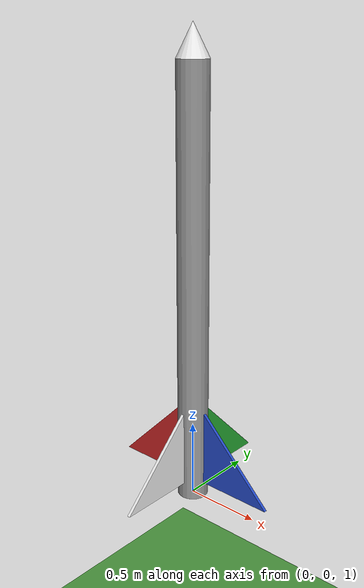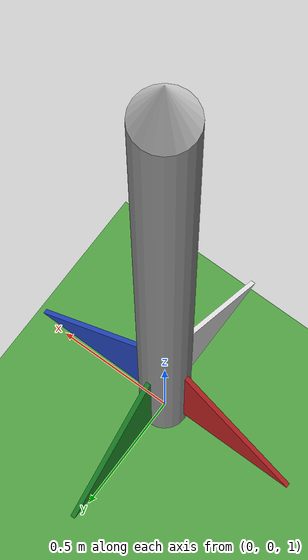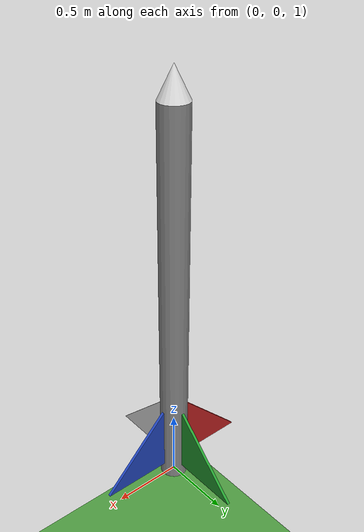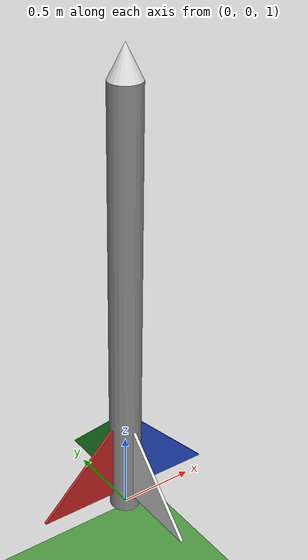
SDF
<sdf version="1.6">
 <world name="default">
  <scene><sky><clouds><speed>12</speed></clouds></sky></scene>
  <spherical_coordinates>
   <latitude_deg>29.4047089</latitude_deg>
   <longitude_deg>-82.1745834</longitude_deg>
   <elevation>100</elevation>
  </spherical_coordinates>
  <include><uri>model://sun</uri></include>
  <include><pose>0 0 1 0 -1.57 0</pose><uri>model://rocket</uri></include>
  <model name="ground_plane">
   <static>true</static>
   <link name="link">
    <collision name="collision">
     <geometry><plane><normal>0 0 1</normal><size>10000 10000</size></plane></geometry>
     <surface><friction><ode><mu>1</mu><mu2>1</mu2></ode></friction></surface>
    </collision>
    <visual name="grass">
     <pose>0 0 -0.1 0 0 0</pose>
     <cast_shadows>false</cast_shadows>
     <geometry><plane><normal>0 0 1</normal><size>10000 10000</size></plane></geometry>
     <material>
      <script><uri>file://media/materials/scripts/gazebo.material</uri><name>Gazebo/Grass</name></script>
     </material>
    </visual>
   </link>
  </model>
  <physics name="default_physics" default="0" type="ode">
   <ode>
    <solver>
     <type>quick</type>
     <iters>10</iters>
     <sor>1.3</sor>
     <use_dynamic_moi_rescaling>0</use_dynamic_moi_rescaling>
    </solver>
    <constraints>
     <cfm>0</cfm>
     <erp>0.2</erp>
     <contact_max_correcting_vel>100</contact_max_correcting_vel>
     <contact_surface_layer>0.001</contact_surface_layer>
    </constraints>
   </ode>
   <max_step_size>0.004</max_step_size>
   <real_time_factor>1</real_time_factor>
   <real_time_update_rate>250</real_time_update_rate>
  </physics>
 </world>
</sdf>

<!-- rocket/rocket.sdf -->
<sdf version='1.6'>
  <model name="rocket">

    <link name='body'>
      <inertial>
        <pose>1.0 0 0 0 1.57 0</pose>
      </inertial>
      <collision name='body_collision'>
        <pose>0 0 0 0 1.57 0</pose>
        <geometry>
          <mesh>
            <uri>model://rocket/meshes/stl/purdue.dae</uri>
          </mesh>
        </geometry>
      </collision>
      <visual name='body_visual'>
        <pose>0 0 0 0 1.57 0</pose>
        <geometry>
          <mesh>
            <uri>model://rocket/meshes/stl/purdue.dae</uri>
          </mesh>
        </geometry>
        <material>
          <script>
            <name>Gazebo/Grey</name>
          </script>
        </material>
      </visual>
      <collision name='nose_collision'>
        <pose>0 0 0 0 1.57 0</pose>
        <geometry>
          <mesh>
            <uri>model://rocket/meshes/stl/nose_cone.stl</uri>
          </mesh>
        </geometry>
      </collision>
      <visual name='nose_visual'>
        <pose>0 0 0 0 1.57 0</pose>
        <geometry>
          <mesh>
            <uri>model://rocket/meshes/stl/nose_cone.stl</uri>
          </mesh>
        </geometry>
        <material>
          <script>
            <name>Gazebo/White</name>
          </script>
        </material>
      </visual>
    </link>

    <link name='fin0'>
      <pose>0 0 0.1 0 0 0</pose>
      <inertial>
        <mass>1e-5</mass>
        <inertia>
          <ixx>1e-5</ixx>
          <iyy>1e-5</iyy>
          <izz>1e-5</izz>
        </inertia>
      </inertial>
      <visual name='visual'>
        <geometry>
          <mesh>
            <uri>model://rocket/meshes/stl/fin.stl</uri>
          </mesh>
        </geometry>
        <material>
          <script>
            <name>Gazebo/Red</name>
          </script>
        </material>
      </visual>
    </link>

    <joint name="fin0_joint" type="revolute">
      <pose>0.3 0 0 0 0 0</pose>
      <parent>body</parent>
      <child>fin0</child>
      <axis>
        <xyz>0 0 -1</xyz>
      </axis>
    </joint>

    <link name='fin1'>
      <pose>0 0.1 0 -1.57 0 0</pose>
       <inertial>
        <mass>1e-5</mass>
        <inertia>
          <ixx>1e-5</ixx>
          <iyy>1e-5</iyy>
          <izz>1e-5</izz>
        </inertia>
      </inertial>
      <visual name='visual'>
        <geometry>
          <mesh>
            <uri>model://rocket/meshes/stl/fin.stl</uri>
          </mesh>
        </geometry>
        <material>
          <script>
            <name>Gazebo/Green</name>
          </script>
        </material>
      </visual>
    </link>

    <joint name="fin1_joint" type="revolute">
      <pose>0.3 0.0 0 0 0 0</pose>
      <parent>body</parent>
      <child>fin1</child>
      <axis>
        <xyz>0 0 -1</xyz>
      </axis>
    </joint>

    <link name='fin2'>
      <pose>0 0 -0.1 3.14 0 0</pose>
      <inertial>
        <mass>1e-5</mass>
        <inertia>
          <ixx>1e-5</ixx>
          <iyy>1e-5</iyy>
          <izz>1e-5</izz>
        </inertia>
      </inertial>
      <visual name='visual'>
        <geometry>
          <mesh>
            <uri>model://rocket/meshes/stl/fin.stl</uri>
          </mesh>
        </geometry>
        <material>
          <script>
            <name>Gazebo/Blue</name>
          </script>
        </material>
      </visual>
    </link>

    <joint name="fin2_joint" type="revolute">
      <pose>0.3 0.0 0 0 0 0</pose>
      <parent>body</parent>
      <child>fin2</child>
      <axis>
        <xyz>0 0 -1</xyz>
      </axis>
    </joint>

    <link name='fin3'>
      <pose>0 -0.1 0 1.57 0 0</pose>
      <inertial>
        <mass>1e-5</mass>
        <inertia>
          <ixx>1e-5</ixx>
          <iyy>1e-5</iyy>
          <izz>1e-5</izz>
        </inertia>
      </inertial>
      <visual name='visual'>
        <geometry>
          <mesh>
            <uri>model://rocket/meshes/stl/fin.stl</uri>
          </mesh>
        </geometry>
        <material>
          <script>
            <name>Gazebo/White</name>
          </script>
        </material>
      </visual>
    </link>

    <joint name="fin3_joint" type="revolute">
      <pose>0.3 0.0 0 0 0 0</pose>
      <parent>body</parent>
      <child>fin3</child>
      <axis>
        <xyz>0 0 -1</xyz>
      </axis>
    </joint>

    <plugin name="rocket_plugin" filename="libRocketPlugin.so">
      <body>body</body>
      <fin0>fin0_joint</fin0>
      <fin1>fin1_joint</fin1>
      <fin2>fin2_joint</fin2>
      <fin3>fin3_joint</fin3>
    </plugin>

  </model>
</sdf>

<!-- vim: set et fenc=utf-8 ft=xml ff=unix sts=0 sw=2 ts=2 : -->
